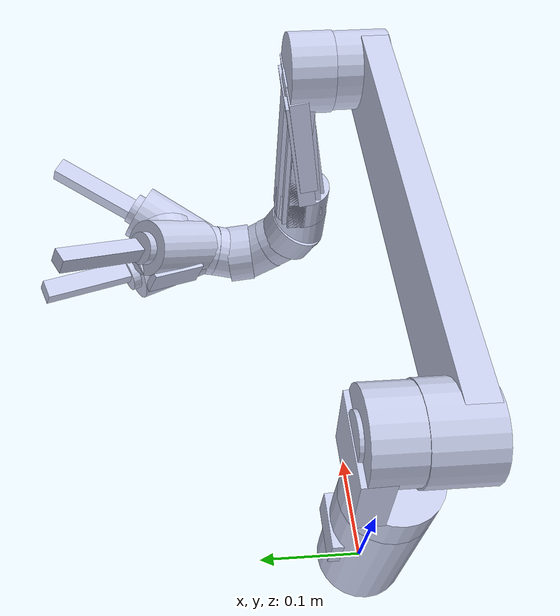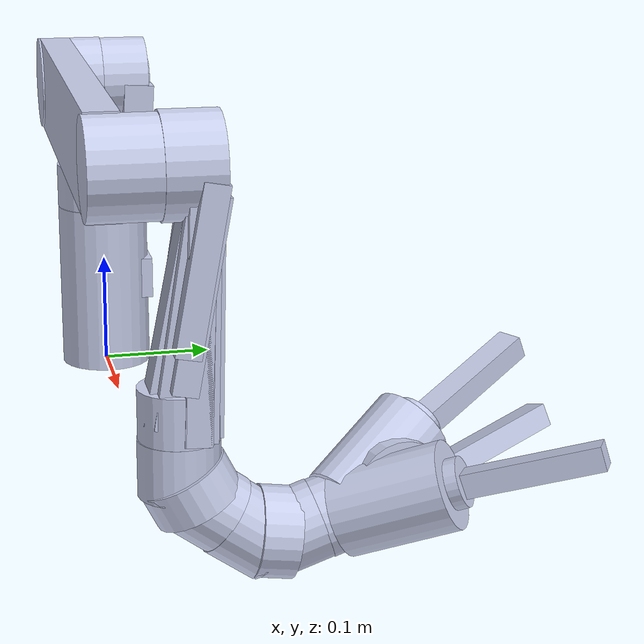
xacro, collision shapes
<?xml version="1.0"?>

<robot xmlns:xi="http://www.w3.org/2001/XInclude"
	xmlns:gazebo="http://playerstage.sourceforge.net/gazebo/xmlschema/#gz"
    xmlns:model="http://playerstage.sourceforge.net/gazebo/xmlschema/#model"
	xmlns:sensor="http://playerstage.sourceforge.net/gazebo/xmlschema/#sensor"
	xmlns:body="http://playerstage.sourceforge.net/gazebo/xmlschema/#body"
    xmlns:geom="http://playerstage.sourceforge.net/gazebo/xmlschema/#geom"
    xmlns:joint="http://playerstage.sourceforge.net/gazebo/xmlschema/#joint"
	xmlns:controller="http://playerstage.sourceforge.net/gazebo/xmlschema/#controller"
	xmlns:interface="http://playerstage.sourceforge.net/gazebo/xmlschema/#interface"
	xmlns:rendering="http://playerstage.sourceforge.net/gazebo/xmlschema/#rendering"
    xmlns:renderable="http://playerstage.sourceforge.net/gazebo/xmlschema/#renderable"
    xmlns:physics="http://playerstage.sourceforge.net/gazebo/xmlschema/#physics"
	xmlns:xacro="http://ros.org/wiki/xacro" name="jaco">

  <xacro:include filename="$(find jaco_model)/urdf/jaco_arm.xacro" />

<link name="root">
      <visual>
	<origin xyz="0 0 0" rpy="0 0 0" />
	<geometry>
	  <box size = "0 0 0"/> <!--making it slightly bigger in x and z direction-->
	</geometry>
      </visual>
      <collision>
	<origin xyz="0 0 0" rpy="0 0 0" />
	<geometry>
	  <box size = "0 0 0"/> <!--making it slightly bigger in x and z direction-->
	</geometry>
      </collision>
    </link>

<xacro:jaco_arm  parent="root"/>

</robot>

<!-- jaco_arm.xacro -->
<root xmlns:xi="http://www.w3.org/2001/XInclude"
	xmlns:gazebo="http://playerstage.sourceforge.net/gazebo/xmlschema/#gz"
    xmlns:model="http://playerstage.sourceforge.net/gazebo/xmlschema/#model"
	xmlns:sensor="http://playerstage.sourceforge.net/gazebo/xmlschema/#sensor"
	xmlns:body="http://playerstage.sourceforge.net/gazebo/xmlschema/#body"
    xmlns:geom="http://playerstage.sourceforge.net/gazebo/xmlschema/#geom"
    xmlns:joint="http://playerstage.sourceforge.net/gazebo/xmlschema/#joint"
	xmlns:controller="http://playerstage.sourceforge.net/gazebo/xmlschema/#controller"
	xmlns:interface="http://playerstage.sourceforge.net/gazebo/xmlschema/#interface"
	xmlns:rendering="http://playerstage.sourceforge.net/gazebo/xmlschema/#rendering"
    xmlns:renderable="http://playerstage.sourceforge.net/gazebo/xmlschema/#renderable"
    xmlns:physics="http://playerstage.sourceforge.net/gazebo/xmlschema/#physics"
	xmlns:xacro="http://ros.org/wiki/xacro">

  <xacro:include filename="$(find jaco_model)/urdf/jaco_common.xacro" />
  <xacro:include filename="$(find jaco_model)/urdf/jaco_transmission_friction.xacro" />

  <property name="link_base" value="jaco_link_base" />
  <property name="link_1" value="jaco_link_1" />
  <property name="link_2" value="jaco_link_2" />
  <property name="link_3" value="jaco_link_3" />
  <property name="link_4" value="jaco_link_4" />
  <property name="link_5" value="jaco_link_5" />
  <property name="link_hand" value="jaco_link_hand" />
  <property name="link_finger_1" value="jaco_link_finger_1" />
  <property name="link_finger_2" value="jaco_link_finger_2" />
  <property name="link_finger_3" value="jaco_link_finger_3" />

  <property name="api_offset" value="0.028" />
  <property name="api_origin" value="jaco_api_origin" />

  <property name="joint_base" value="jaco_joint_base" />
  <property name="joint_base_axis_xyz" value="0 0 0" />
  <property name="joint_base_origin_xyz" value="0 0 0" />
  <property name="joint_base_origin_rpy" value="0 0 0" />

  <property name="joint_1" value="jaco_joint_1" />
  <property name="joint_1_axis_xyz" value="0 0 -1" />
  <property name="joint_1_origin_xyz" value="0 0 0.1535" />
  <property name="joint_1_origin_rpy" value="${J_PI} 0 ${J_PI}" />
  <property name="joint_1_lower_limit" value="${-2*J_PI}" />
  <property name="joint_1_upper_limit" value="${2*J_PI}" />

  <property name="joint_2" value="jaco_joint_2" />
  <property name="joint_2_axis_xyz" value="0 0 1" />
  <property name="joint_2_origin_xyz" value="0 0 -0.1185" />
  <property name="joint_2_origin_rpy" value="-${J_PI/2} ${J_PI} 0" />
  <property name="joint_2_lower_limit" value="${-J_PI}" />
  <property name="joint_2_upper_limit" value="${0}" />

  <property name="joint_3" value="jaco_joint_3" />
  <property name="joint_3_axis_xyz" value="0 0 -1" />
  <property name="joint_3_origin_xyz" value="0.41 0 0" />
  <property name="joint_3_origin_rpy" value="${J_PI} 0 ${J_PI/2}" />
  <property name="joint_3_lower_limit" value="${-5*J_PI/4}" />
  <property name="joint_3_upper_limit" value="${1*J_PI/4}" />

  <property name="joint_4" value="jaco_joint_4" />
  <property name="joint_4_axis_xyz" value="0 0 -1" />
  <property name="joint_4_origin_xyz" value="0.207 0 -0.01125" />
  <property name="joint_4_origin_rpy" value="${J_PI} ${J_PI/2} 0" />
  <property name="joint_4_lower_limit" value="${-2*J_PI}" />
  <property name="joint_4_upper_limit" value="${2*J_PI}" />

  <property name="joint_5" value="jaco_joint_5" />
  <property name="joint_5_axis_xyz" value="0 0 -1" />
  <property name="joint_5_origin_xyz" value="0.0343 0 -0.06588" />
  <property name="joint_5_origin_rpy" value="0 -${J_PI/180*55} 0" />
  <property name="joint_5_lower_limit" value="${-2*J_PI}" />
  <property name="joint_5_upper_limit" value="${2*J_PI}" />

  <property name="joint_6" value="jaco_joint_6" />
  <property name="joint_6_axis_xyz" value="0 0 -1" />
  <property name="joint_6_origin_xyz" value="0.0343 0 -0.06588" />
  <property name="joint_6_origin_rpy" value="-${J_PI/180*55} 0 ${J_PI/2}" />
  <property name="joint_6_lower_limit" value="${-2*J_PI}" />
  <property name="joint_6_upper_limit" value="${2*J_PI}" />

  <property name="joint_finger_1" value="jaco_joint_finger_1" />
  <property name="joint_finger_1_axis_xyz" value="0 0 1" />
  <property name="joint_finger_1_origin_xyz" value="-0.03978 0 -0.10071" />
  <property name="joint_finger_1_origin_rpy" value="-1.7983 1.117 3.1416" />
  <property name="joint_finger_1_lower_limit" value="0" />
  <property name="joint_finger_1_upper_limit" value="${J_PI/180*40}" />

  <property name="joint_finger_2" value="jaco_joint_finger_2" />
  <property name="joint_finger_2_axis_xyz" value="0 0 1" />
  <property name="joint_finger_2_origin_xyz" value="0.03569 -0.0216 -0.10071" />
  <property name="joint_finger_2_origin_rpy" value="-1.6222 1.117 -0.23615" />
  <property name="joint_finger_2_lower_limit" value="0" />
  <property name="joint_finger_2_upper_limit" value="${J_PI/180*40}" />

  <property name="joint_finger_3" value="jaco_joint_finger_3" />
  <property name="joint_finger_3_axis_xyz" value="0 0 1" />
  <property name="joint_finger_3_origin_xyz" value="0.03569 0.0216 -0.10071" />
  <property name="joint_finger_3_origin_rpy" value="-1.5161 1.1459 0.23978" />
  <property name="joint_finger_3_lower_limit" value="0" />
  <property name="joint_finger_3_upper_limit" value="${J_PI/180*40}" />

  <property name="link_end_effector"   value="jaco_end_effector" />
  <property name="end_effector_offset" value="0.1687" />

  <property name="link_base_link_data">
      <link_data>
          <collision>
            <origin rpy="0 0 0" xyz="0 0 0.076" />
            <geometry>
                <cylinder length="0.154" radius="0.042" />
            </geometry>
        </collision>
        <collision>
            <origin rpy="0 0 0" xyz="0 0.038 0.084" />
            <geometry>
                <box size="0.051 0.011 0.038" />
            </geometry>
        </collision>
      </link_data>
  </property>

  <property name="link_1_link_data">
      <link_data>
            <collision>
                <origin rpy="0 0 0" xyz="0 0 -0.02" />
                <geometry>
                    <cylinder length="0.04" radius="0.042" />
                </geometry>
            </collision>
            <collision>
                <origin rpy="${J_PI/2.0} 0 0" xyz="0 ${0.0395/2} -0.11925" />
                <geometry>
                    <cylinder length="0.045" radius="0.0395" />
                </geometry>
            </collision>
            <collision>
                <origin rpy="${J_PI/2.0} 0 0" xyz="0 ${0.0395/2+0.024} -0.11925" />
                <geometry>
                    <cylinder length="0.004" radius="0.02" />
                </geometry>
            </collision>
            <collision>
                <origin rpy="0.06 0 0" xyz="0 0.031 -0.07875" />
                <geometry>
                    <box size="0.079 0.027 0.080" />
                </geometry>
            </collision>
      </link_data>
  </property>

  <property name="link_2_link_data">
      <link_data>
            <collision>
                <origin rpy="0 0 0" xyz="0 0 -0.027" />
                <geometry>
                    <cylinder length="0.056" radius="0.041" />
                </geometry>
            </collision>
            <collision>
                <origin rpy="0 0 0" xyz="0.411 0 -0.027" />
                <geometry>
                    <cylinder length="0.056" radius="0.0395" />
                </geometry>
            </collision>
            <collision>
                <origin rpy="0 0 0" xyz="${0.411/2} 0 -0.040" />
                <geometry>
                    <box size="0.411 0.082 0.027" />
                </geometry>
            </collision>
        </link_data>
  </property>

  <property name="link_3_link_data">
      <link_data>
            <collision>
                <origin rpy="0 0 0" xyz="0 0 -0.0225" />
                <geometry>
                    <cylinder length="0.045" radius="0.041" />
                </geometry>
            </collision>
            <collision>
                <origin rpy="0 ${J_PI/2.0} 0" xyz="0.187 0 -0.012" />
                <geometry>
                    <cylinder length="0.04" radius="0.032" />
                </geometry>
            </collision>
            <collision>
                <origin rpy="0 -0.02 0" xyz="${0.25/2-0.02} 0 -0.040" />
                <geometry>
                    <box size="0.2 0.03 0.01" />
                </geometry>
            </collision>
            <collision>
                <origin rpy="0 -0.025 0" xyz="${0.25/2-0.02} 0 -0.035" />
                <geometry>
                    <box size="0.2 0.053 0.01" />
                </geometry>
            </collision>
            <collision>
                <origin rpy="0 -0.03 0" xyz="${0.25/2-0.02} 0 -0.025" />
                <geometry>
                    <box size="0.2 0.066 0.02" />
                </geometry>
            </collision>
            <collision>
                <origin rpy="0 -0.04 0" xyz="${0.25/2-0.02} 0 -0.025" />
                <geometry>
                    <box size="0.2 0.066 0.02" />
                </geometry>
            </collision>
            <collision>
                <origin rpy="0 -0.16 0" xyz="${0.25/2-0.02} 0 -0.013" />
                <geometry>
                    <box size="0.18 0.05 0.018" />
                </geometry>
            </collision>
            <collision>
                <origin rpy="0 -0.20 0" xyz="${0.25/2-0.02} 0 -0.009" />
                <geometry>
                    <box size="0.18 0.03 0.016" />
                </geometry>
            </collision>
            <collision>
                <origin rpy="0 -0.18 0" xyz="0.07 0 -0.025" />
                <geometry>
                    <box size="0.13 0.084 0.02" />
                </geometry>
            </collision>
            <collision>
                <origin rpy="0 -0.18 0" xyz="0.09 0 -0.025" />
                <geometry>
                    <box size="0.15 0.072 0.02" />
                </geometry>
            </collision>
        </link_data>
  </property>

  <property name="link_4_link_data">
      <link_data>
            <collision>
                <origin rpy="0 0 0" xyz="0 0 -${0.045/2}" />
                <geometry>
                    <cylinder length="0.045" radius="0.032" />
                </geometry>
            </collision>
            <collision>
                <origin rpy="0 ${-J_PI/8-0.08} 0" xyz="0.008 0 ${-0.03-0.045/4}" />
                <geometry>
                    <cylinder length="0.030" radius="0.036" />
                </geometry>
            </collision>
            <collision>
                <origin rpy="0 ${-J_PI/4-0.16} 0" xyz="0.017 0 ${-0.03-0.045/2}" />
                <geometry>
                    <cylinder length="0.045" radius="0.032" />
                </geometry>
            </collision>
        </link_data>
  </property>

  <property name="link_5_link_data">
      <link_data>
            <collision>
                <origin rpy="0 0 0" xyz="0 0 -${0.045/2}" />
                <geometry>
                    <cylinder length="0.045" radius="0.032" />
                </geometry>
            </collision>
            <collision>
                <origin rpy="0 ${-J_PI/8-0.08} 0" xyz="0.008 0 ${-0.03-0.045/4}" />
                <geometry>
                    <cylinder length="0.030" radius="0.036" />
                </geometry>
            </collision>
            <collision>
                <origin rpy="0 ${-J_PI/4-0.16} 0" xyz="0.017 0 ${-0.03-0.045/2}" />
                <geometry>
                    <cylinder length="0.045" radius="0.032" />
                </geometry>
            </collision>
        </link_data>
  </property>

  <property name="link_hand_link_data">
      <link_data>
            <collision>
                <origin rpy="0 0 0" xyz="0 0 -${0.035/2}" />
                <geometry>
                    <cylinder length="0.035" radius="0.032" />
                </geometry>
            </collision>
            <collision>
                <origin rpy="-0.05 0.45 0" xyz="-0.022 0 -0.06" />
                <geometry>
                    <cylinder length="0.09" radius="0.035" />
                </geometry>
            </collision>
            <collision>
                <origin rpy="-0.05 0.45 0" xyz="-0.022 0 -0.06" />
                <geometry>
                    <cylinder length="0.11" radius="0.02" />
                </geometry>
            </collision>
            <collision>
                <origin rpy="-0.25 -0.45 0" xyz="0.018 -0.014 -0.06" />
                <geometry>
                    <cylinder length="0.09" radius="0.034" />
                </geometry>
            </collision>
            <collision>
                <origin rpy="-0.25 -0.45 0" xyz="0.018 -0.014 -0.06" />
                <geometry>
                    <cylinder length="0.11" radius="0.02" />
                </geometry>
            </collision>
            <collision>
                <origin rpy="0.25 -0.45 0" xyz="0.018 0.014 -0.06" />
                <geometry>
                    <cylinder length="0.09" radius="0.034" />
                </geometry>
            </collision>
            <collision>
                <origin rpy="0.25 -0.45 0" xyz="0.018 0.014 -0.06" />
                <geometry>
                    <cylinder length="0.11" radius="0.02" />
                </geometry>
            </collision>
            <collision>
                <origin rpy="0 -0.45 0" xyz="0.052 0 -0.055" />
                <geometry>
                    <box size="0.01 0.03 0.07" />
                </geometry>
            </collision>
            <collision>
                <origin rpy="0 ${J_PI/2.0-0.2} -0.03" xyz="-0.005 0 -0.065" />
                <geometry>
                    <cylinder length="0.02" radius="0.04" />
                </geometry>
            </collision>
        </link_data>
  </property>

  <property name="finger_link_data">
      <link_data>
          <collision>
              <origin rpy="0 0 0" xyz="${0.119/2} 0 0" />
              <geometry>
                  <box size="0.119 0.022 0.019" />
              </geometry>
          </collision>
      </link_data>
  </property>
  <xacro:property name="mu1_default" value="0.2" />
  <xacro:property name="mu2_default" value="0.2" />
  <xacro:property name="kp_default" value="1000.0" />
  <xacro:property name="kd_default" value="1.0" />

  <xacro:macro name="jaco_arm" params="parent">
    	<gazebo>
	    <plugin name="gazebo_ros_controller_manager" filename="libgazebo_ros_control.so">
		<robotNamespace>/jaco_arm</robotNamespace>
		<robotParam>robot_description</robotParam>
	    </plugin>
	</gazebo>
	<gazebo>
	    <plugin name="gazebo_ros_joint_trajectory" filename="libgazebo_ros_joint_pose_trajectory.so">
		<robotNamespace>/jaco_arm</robotNamespace>
		<alwaysOn>true</alwaysOn>
		<updateRate>100.0</updateRate>
	    </plugin>
	</gazebo>

    <xacro:jaco_struct parent="${parent}" basename="jaco"/>

    <xacro:jaco_link link_name="${link_finger_1}"><xacro:insert_block name="finger_link_data" /></xacro:jaco_link>
    <xacro:jaco_finger_joint joint_name="${joint_finger_1}" type="revolute" parent="${link_hand}" child="${link_finger_1}" joint_axis_xyz="${joint_finger_1_axis_xyz}" joint_origin_xyz="${joint_finger_1_origin_xyz}" joint_origin_rpy="${joint_finger_1_origin_rpy}" lower_limit="${joint_finger_1_lower_limit}" upper_limit="${joint_finger_1_upper_limit}"/>

    <xacro:jaco_link link_name="${link_finger_2}"><xacro:insert_block name="finger_link_data" /></xacro:jaco_link>
    <xacro:jaco_finger_joint joint_name="${joint_finger_2}" type="revolute" parent="${link_hand}" child="${link_finger_2}" joint_axis_xyz="${joint_finger_2_axis_xyz}" joint_origin_xyz="${joint_finger_2_origin_xyz}" joint_origin_rpy="${joint_finger_2_origin_rpy}" lower_limit="${joint_finger_2_lower_limit}" upper_limit="${joint_finger_2_upper_limit}"/>

    <xacro:jaco_link link_name="${link_finger_3}"><xacro:insert_block name="finger_link_data" /></xacro:jaco_link>
    <xacro:jaco_finger_joint joint_name="${joint_finger_3}" type="revolute" parent="${link_hand}" child="${link_finger_3}" joint_axis_xyz="${joint_finger_3_axis_xyz}" joint_origin_xyz="${joint_finger_3_origin_xyz}" joint_origin_rpy="${joint_finger_3_origin_rpy}" lower_limit="${joint_finger_3_lower_limit}" upper_limit="${joint_finger_3_upper_limit}"/>
    <xacro:jaco_transmission_friction_gazebo/>
  </xacro:macro>

</root>

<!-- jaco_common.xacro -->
<root xmlns:xi="http://www.w3.org/2001/XInclude"
	xmlns:gazebo="http://playerstage.sourceforge.net/gazebo/xmlschema/#gz"
    xmlns:model="http://playerstage.sourceforge.net/gazebo/xmlschema/#model"
	xmlns:sensor="http://playerstage.sourceforge.net/gazebo/xmlschema/#sensor"
	xmlns:body="http://playerstage.sourceforge.net/gazebo/xmlschema/#body"
    xmlns:geom="http://playerstage.sourceforge.net/gazebo/xmlschema/#geom"
    xmlns:joint="http://playerstage.sourceforge.net/gazebo/xmlschema/#joint"
	xmlns:controller="http://playerstage.sourceforge.net/gazebo/xmlschema/#controller"
	xmlns:interface="http://playerstage.sourceforge.net/gazebo/xmlschema/#interface"
	xmlns:rendering="http://playerstage.sourceforge.net/gazebo/xmlschema/#rendering"
    xmlns:renderable="http://playerstage.sourceforge.net/gazebo/xmlschema/#renderable"
    xmlns:physics="http://playerstage.sourceforge.net/gazebo/xmlschema/#physics"
	xmlns:xacro="http://ros.org/wiki/xacro">

    <property name="J_PI" value="3.1415926535897931" />

    <xacro:macro name="jaco_link" params="link_name **link_data">
    <link name="${link_name}">
	<inertial>
                <mass value="0.01"/>
                <inertia ixx="0.001" ixy="0" ixz="0" iyy="0.001" iyz="0" izz="0.001"/>
                <origin/>
            </inertial>
          <visual>
                     <geometry>
                             <mesh
              filename="package://jaco_model/meshes/${link_name}.dae"/>
                    </geometry>
                    <material name="carbon_fiber">
                <color rgba="0.792156862745098 0.819607843137255 0.933333333333333 1" />
                    </material>
            </visual>

            <xacro:insert_block name="link_data" />
    </link>
    </xacro:macro>

    <xacro:macro name="default_link_data" params="link_name">
         <link_data>
            <collision>
                    <geometry>
                             <mesh
              filename="package://jaco_model/meshes/${link_name}.dae"/>
                    </geometry>
            </collision>
        </link_data>
    </xacro:macro>

    <xacro:macro name="jaco_joint" params="joint_name type parent child joint_axis_xyz joint_origin_xyz joint_origin_rpy joint_lower_limit joint_upper_limit">
    <joint name="${joint_name}" type="${type}">
        <parent link="${parent}"/>
        <child link="${child}"/>
        <axis xyz="${joint_axis_xyz}"/>
        <limit effort="30" velocity="0.35" lower="${joint_lower_limit}" upper="${joint_upper_limit}"/>
        <origin xyz="${joint_origin_xyz}" rpy="${joint_origin_rpy}"/>
        <dynamics damping="0.0"/>
     </joint>
    </xacro:macro>

    <xacro:macro name="jaco_finger_joint" params="joint_name type parent child joint_axis_xyz joint_origin_xyz joint_origin_rpy lower_limit upper_limit">
    <joint name="${joint_name}" type="${type}">
        <parent link="${parent}"/>
        <child link="${child}"/>
        <axis xyz="${joint_axis_xyz}"/>
        <origin xyz="${joint_origin_xyz}" rpy="${joint_origin_rpy}"/>
        <limit lower="${lower_limit}" upper="${upper_limit}" effort="30" velocity="0.3"/>
        <dynamics damping="0.0"/>
     </joint>
    </xacro:macro>

   <xacro:macro name="jaco_finger_tip_joint" params="joint_name type parent child joint_axis_xyz joint_origin_xyz joint_origin_rpy lower_limit upper_limit mimic_joint mimic_multiplier mimic_offset">
    <joint name="${joint_name}" type="${type}">
        <parent link="${parent}"/>
        <child link="${child}"/>
        <axis xyz="${joint_axis_xyz}"/>
        <origin xyz="${joint_origin_xyz}" rpy="${joint_origin_rpy}"/>
        <limit lower="${lower_limit}" upper="${upper_limit}" effort="30" velocity="5"/>
        <mimic joint="${mimic_joint}" multiplier="${mimic_multiplier}" offset="${mimic_offset}"/>
     </joint>
    </xacro:macro>

    <xacro:macro name="jaco_struct" params="parent basename">
        <xacro:jaco_link link_name="${link_base}">
            <xacro:insert_block name="link_base_link_data" />
        </xacro:jaco_link>
		<xacro:jaco_joint joint_name="${joint_base}" type="fixed" parent="${parent}" child="${link_base}" joint_axis_xyz="${joint_base_axis_xyz}" joint_origin_xyz="${joint_base_origin_xyz}" joint_origin_rpy="${joint_base_origin_rpy}" joint_lower_limit="0" joint_upper_limit="0"/>
        <xacro:jaco_link link_name="${link_1}">
            <xacro:insert_block name="link_1_link_data" />
        </xacro:jaco_link>
        <xacro:jaco_joint joint_name="${joint_1}" type="continuous" parent="${link_base}" child="${link_1}" joint_axis_xyz="${joint_1_axis_xyz}" joint_origin_xyz="${joint_1_origin_xyz}" joint_origin_rpy="${joint_1_origin_rpy}" joint_lower_limit="${joint_1_lower_limit}" joint_upper_limit="${joint_1_upper_limit}"/>
        <xacro:jaco_link link_name="${link_2}">
            <xacro:insert_block name="link_2_link_data" />
        </xacro:jaco_link>
        <xacro:jaco_joint joint_name="${joint_2}" type="revolute" parent="${link_1}" child="${link_2}" joint_axis_xyz="${joint_2_axis_xyz}" joint_origin_xyz="${joint_2_origin_xyz}" joint_origin_rpy="${joint_2_origin_rpy}" joint_lower_limit="${joint_2_lower_limit}" joint_upper_limit="${joint_2_upper_limit}"/>
        <xacro:jaco_link link_name="${link_3}">
            <xacro:insert_block name="link_3_link_data" />
        </xacro:jaco_link>
        <xacro:jaco_joint joint_name="${joint_3}" type="revolute" parent="${link_2}" child="${link_3}" joint_axis_xyz="${joint_3_axis_xyz}" joint_origin_xyz="${joint_3_origin_xyz}" joint_origin_rpy="${joint_3_origin_rpy}" joint_lower_limit="${joint_3_lower_limit}" joint_upper_limit="${joint_3_upper_limit}"/>
        <xacro:jaco_link link_name="${link_4}">
            <xacro:insert_block name="link_4_link_data" />
        </xacro:jaco_link>
        <xacro:jaco_joint joint_name="${joint_4}" type="continuous" parent="${link_3}" child="${link_4}" joint_axis_xyz="${joint_4_axis_xyz}" joint_origin_xyz="${joint_4_origin_xyz}" joint_origin_rpy="${joint_4_origin_rpy}" joint_lower_limit="${joint_4_lower_limit}" joint_upper_limit="${joint_4_upper_limit}"/>
        <xacro:jaco_link link_name="${link_5}">
            <xacro:insert_block name="link_5_link_data" />
        </xacro:jaco_link>
        <xacro:jaco_joint joint_name="${joint_5}" type="continuous" parent="${link_4}" child="${link_5}" joint_axis_xyz="${joint_5_axis_xyz}" joint_origin_xyz="${joint_5_origin_xyz}" joint_origin_rpy="${joint_5_origin_rpy}" joint_lower_limit="${joint_5_lower_limit}" joint_upper_limit="${joint_5_upper_limit}"/>
        <xacro:jaco_link link_name="${link_hand}">
            <xacro:insert_block name="link_hand_link_data" />
        </xacro:jaco_link>
        <xacro:jaco_joint joint_name="${joint_6}" type="continuous" parent="${link_5}" child="${link_hand}" joint_axis_xyz="${joint_6_axis_xyz}" joint_origin_xyz="${joint_6_origin_xyz}" joint_origin_rpy="${joint_6_origin_rpy}" joint_lower_limit="${joint_6_lower_limit}" joint_upper_limit="${joint_6_upper_limit}"/>

       <joint name="${link_base}_to_api_origin" type="fixed">
         <parent link="${link_base}"/>
         <child link="${api_origin}"/>
         <origin xyz="0 0 ${api_offset}" rpy="0 0 0" />
       </joint>
       <link name="${api_origin}">
        </link>

        <joint name="${link_hand}_to_end_effector" type="fixed">
          <parent link="${link_hand}"/>
          <child link="${link_end_effector}"/>
          <origin xyz="0 0 -${end_effector_offset}" rpy="0 ${J_PI} 0" />
        </joint>
        <link name="${link_end_effector}" />

    </xacro:macro>

</root>
